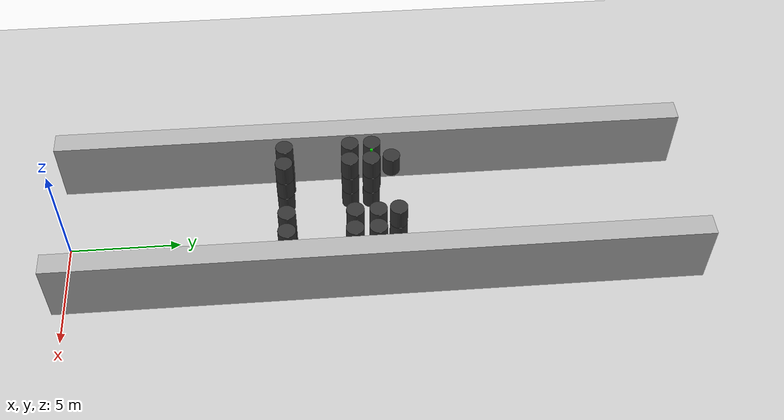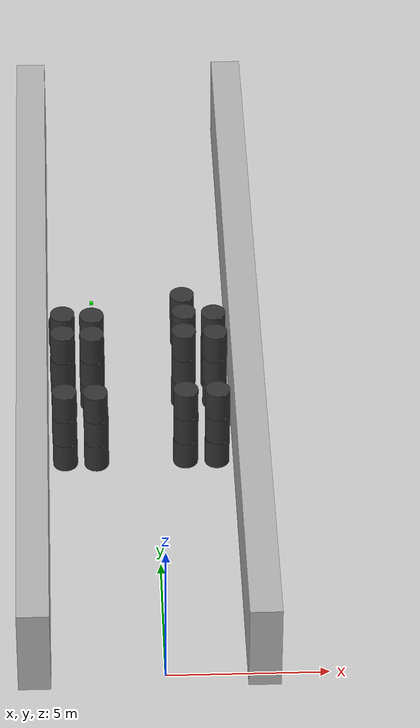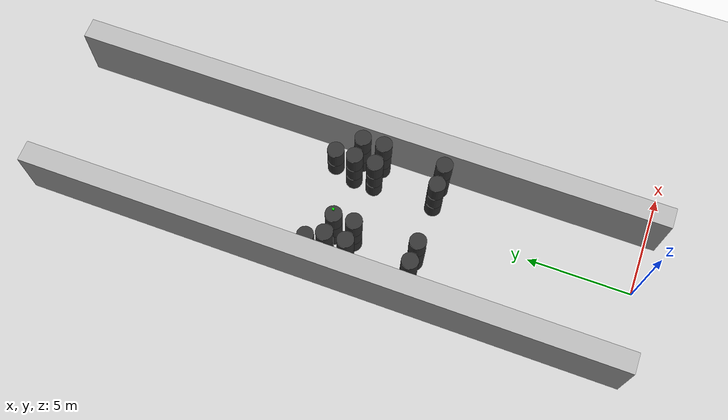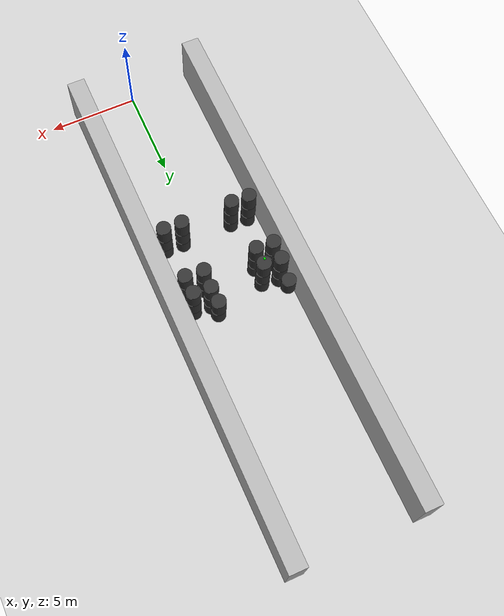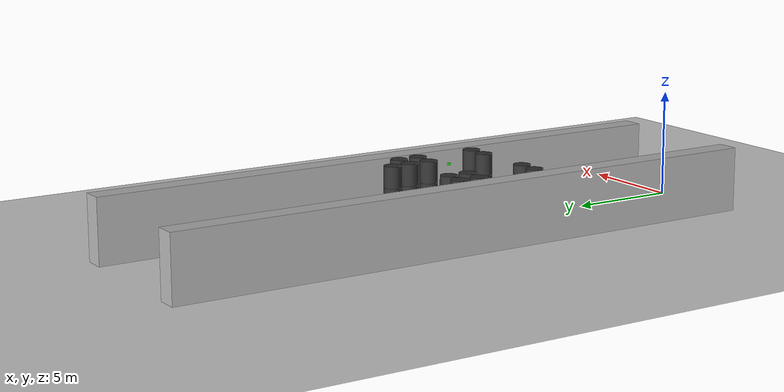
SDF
<sdf version="1.6">
 <world name="default">
  <include><uri>model://ground_plane</uri></include>
  <model name="wall_0">
   <pose frame="sim_world">-4.0 14.0 1.5 0 0 0</pose>
   <static>True</static>
   <link name="wall_0_link">
    <inertial>
     <mass>100</mass>
     <inertia>
      <ixx>0.166667</ixx>
      <ixy>0</ixy>
      <ixz>0</ixz>
      <iyy>0.166667</iyy>
      <iyz>0</iyz>
      <izz>0.166667</izz>
     </inertia>
    </inertial>
    <collision name="wall_0_collision">
     <geometry><box><size>1.0 29.0 3.0</size></box></geometry>
     <max_contacts>100</max_contacts>
    </collision>
    <visual name="wall_0_visual">
     <geometry><box><size>1.0 29.0 3.0</size></box></geometry>
     <material><ambient>0.7 0.7 0.7 1</ambient><diffuse>0.7 0.7 0.7 1</diffuse></material>
    </visual>
   </link>
  </model>
  <model name="wall_1">
   <pose frame="sim_world">3.0 14.0 1.5 0 0 0</pose>
   <static>True</static>
   <link name="wall_1_link">
    <inertial>
     <mass>100</mass>
     <inertia>
      <ixx>0.166667</ixx>
      <ixy>0</ixy>
      <ixz>0</ixz>
      <iyy>0.166667</iyy>
      <iyz>0</iyz>
      <izz>0.166667</izz>
     </inertia>
    </inertial>
    <collision name="wall_1_collision">
     <geometry><box><size>1.0 29.0 3.0</size></box></geometry>
     <max_contacts>100</max_contacts>
    </collision>
    <visual name="wall_1_visual">
     <geometry><box><size>1.0 29.0 3.0</size></box></geometry>
     <material><ambient>0.7 0.7 0.7 1</ambient><diffuse>0.7 0.7 0.7 1</diffuse></material>
    </visual>
   </link>
  </model>
  <model name="cylinder_15">
   <pose frame="sim_world">-2.95974717272 9.99762335335 0.5 0 -0 0</pose>
   <static>True</static>
   <link name="cylinder_15_link">
    <inertial>
     <mass>100</mass>
     <inertia><ixx>0.145833</ixx><ixy>0</ixy><ixz>0</ixz><iyy>0.145833</iyy><iyz>0</iyz><izz>0.125</izz></inertia>
    </inertial>
    <collision name="cylinder_15_collision">
     <geometry><cylinder><length>1.0</length><radius>0.4</radius></cylinder></geometry>
     <max_contacts>100</max_contacts>
    </collision>
    <visual name="cylinder_15_visual">
     <geometry><cylinder><length>1.0</length><radius>0.4</radius></cylinder></geometry>
     <material><ambient>0.2 0.2 0.2 1</ambient><diffuse>0.2 0.2 0.2 1</diffuse></material>
    </visual>
   </link>
  </model>
  <model name="cylinder_16">
   <pose frame="sim_world">-2.96733454405 10.0077599874 1.5 0 -0 0</pose>
   <static>True</static>
   <link name="cylinder_16_link">
    <inertial>
     <mass>100</mass>
     <inertia><ixx>0.145833</ixx><ixy>0</ixy><ixz>0</ixz><iyy>0.145833</iyy><iyz>0</iyz><izz>0.125</izz></inertia>
    </inertial>
    <collision name="cylinder_16_collision">
     <geometry><cylinder><length>1.0</length><radius>0.4</radius></cylinder></geometry>
     <max_contacts>100</max_contacts>
    </collision>
    <visual name="cylinder_16_visual">
     <geometry><cylinder><length>1.0</length><radius>0.4</radius></cylinder></geometry>
     <material><ambient>0.2 0.2 0.2 1</ambient><diffuse>0.2 0.2 0.2 1</diffuse></material>
    </visual>
   </link>
  </model>
  <model name="cylinder_17">
   <pose frame="sim_world">-2.9538205058 10.0074615674 2.5 0 -0 0</pose>
   <static>True</static>
   <link name="cylinder_17_link">
    <inertial>
     <mass>100</mass>
     <inertia><ixx>0.145833</ixx><ixy>0</ixy><ixz>0</ixz><iyy>0.145833</iyy><iyz>0</iyz><izz>0.125</izz></inertia>
    </inertial>
    <collision name="cylinder_17_collision">
     <geometry><cylinder><length>1.0</length><radius>0.4</radius></cylinder></geometry>
     <max_contacts>100</max_contacts>
    </collision>
    <visual name="cylinder_17_visual">
     <geometry><cylinder><length>1.0</length><radius>0.4</radius></cylinder></geometry>
     <material><ambient>0.2 0.2 0.2 1</ambient><diffuse>0.2 0.2 0.2 1</diffuse></material>
    </visual>
   </link>
  </model>
  <model name="cylinder_18">
   <pose frame="sim_world">-2.99630284277 13.0216252734 0.5 0 -0 0</pose>
   <static>True</static>
   <link name="cylinder_18_link">
    <inertial>
     <mass>100</mass>
     <inertia><ixx>0.145833</ixx><ixy>0</ixy><ixz>0</ixz><iyy>0.145833</iyy><iyz>0</iyz><izz>0.125</izz></inertia>
    </inertial>
    <collision name="cylinder_18_collision">
     <geometry><cylinder><length>1.0</length><radius>0.4</radius></cylinder></geometry>
     <max_contacts>100</max_contacts>
    </collision>
    <visual name="cylinder_18_visual">
     <geometry><cylinder><length>1.0</length><radius>0.4</radius></cylinder></geometry>
     <material><ambient>0.2 0.2 0.2 1</ambient><diffuse>0.2 0.2 0.2 1</diffuse></material>
    </visual>
   </link>
  </model>
  <model name="cylinder_19">
   <pose frame="sim_world">-3.01050325647 13.0122026184 1.5 0 -0 0</pose>
   <static>True</static>
   <link name="cylinder_19_link">
    <inertial>
     <mass>100</mass>
     <inertia><ixx>0.145833</ixx><ixy>0</ixy><ixz>0</ixz><iyy>0.145833</iyy><iyz>0</iyz><izz>0.125</izz></inertia>
    </inertial>
    <collision name="cylinder_19_collision">
     <geometry><cylinder><length>1.0</length><radius>0.4</radius></cylinder></geometry>
     <max_contacts>100</max_contacts>
    </collision>
    <visual name="cylinder_19_visual">
     <geometry><cylinder><length>1.0</length><radius>0.4</radius></cylinder></geometry>
     <material><ambient>0.2 0.2 0.2 1</ambient><diffuse>0.2 0.2 0.2 1</diffuse></material>
    </visual>
   </link>
  </model>
  <model name="cylinder_20">
   <pose frame="sim_world">-2.99424971212 13.0228038659 2.5 0 -0 0</pose>
   <static>True</static>
   <link name="cylinder_20_link">
    <inertial>
     <mass>100</mass>
     <inertia><ixx>0.145833</ixx><ixy>0</ixy><ixz>0</ixz><iyy>0.145833</iyy><iyz>0</iyz><izz>0.125</izz></inertia>
    </inertial>
    <collision name="cylinder_20_collision">
     <geometry><cylinder><length>1.0</length><radius>0.4</radius></cylinder></geometry>
     <max_contacts>100</max_contacts>
    </collision>
    <visual name="cylinder_20_visual">
     <geometry><cylinder><length>1.0</length><radius>0.4</radius></cylinder></geometry>
     <material><ambient>0.2 0.2 0.2 1</ambient><diffuse>0.2 0.2 0.2 1</diffuse></material>
    </visual>
   </link>
  </model>
  <model name="cylinder_21">
   <pose frame="sim_world">-2.98432138656 14.0504166469 0.5 0 -0 0</pose>
   <static>True</static>
   <link name="cylinder_21_link">
    <inertial>
     <mass>100</mass>
     <inertia><ixx>0.145833</ixx><ixy>0</ixy><ixz>0</ixz><iyy>0.145833</iyy><iyz>0</iyz><izz>0.125</izz></inertia>
    </inertial>
    <collision name="cylinder_21_collision">
     <geometry><cylinder><length>1.0</length><radius>0.4</radius></cylinder></geometry>
     <max_contacts>100</max_contacts>
    </collision>
    <visual name="cylinder_21_visual">
     <geometry><cylinder><length>1.0</length><radius>0.4</radius></cylinder></geometry>
     <material><ambient>0.2 0.2 0.2 1</ambient><diffuse>0.2 0.2 0.2 1</diffuse></material>
    </visual>
   </link>
  </model>
  <model name="cylinder_22">
   <pose frame="sim_world">-2.98310022397 14.0452732466 1.5 0 -0 0</pose>
   <static>True</static>
   <link name="cylinder_22_link">
    <inertial>
     <mass>100</mass>
     <inertia><ixx>0.145833</ixx><ixy>0</ixy><ixz>0</ixz><iyy>0.145833</iyy><iyz>0</iyz><izz>0.125</izz></inertia>
    </inertial>
    <collision name="cylinder_22_collision">
     <geometry><cylinder><length>1.0</length><radius>0.4</radius></cylinder></geometry>
     <max_contacts>100</max_contacts>
    </collision>
    <visual name="cylinder_22_visual">
     <geometry><cylinder><length>1.0</length><radius>0.4</radius></cylinder></geometry>
     <material><ambient>0.2 0.2 0.2 1</ambient><diffuse>0.2 0.2 0.2 1</diffuse></material>
    </visual>
   </link>
  </model>
  <model name="cylinder_23">
   <pose frame="sim_world">-2.98236017431 14.0354608389 2.5 0 -0 0</pose>
   <static>True</static>
   <link name="cylinder_23_link">
    <inertial>
     <mass>100</mass>
     <inertia><ixx>0.145833</ixx><ixy>0</ixy><ixz>0</ixz><iyy>0.145833</iyy><iyz>0</iyz><izz>0.125</izz></inertia>
    </inertial>
    <collision name="cylinder_23_collision">
     <geometry><cylinder><length>1.0</length><radius>0.4</radius></cylinder></geometry>
     <max_contacts>100</max_contacts>
    </collision>
    <visual name="cylinder_23_visual">
     <geometry><cylinder><length>1.0</length><radius>0.4</radius></cylinder></geometry>
     <material><ambient>0.2 0.2 0.2 1</ambient><diffuse>0.2 0.2 0.2 1</diffuse></material>
    </visual>
   </link>
  </model>
  <model name="cylinder_25">
   <pose frame="sim_world">-3.04206244545 14.9629978575 1.5 0 -0 0</pose>
   <static>True</static>
   <link name="cylinder_25_link">
    <inertial>
     <mass>100</mass>
     <inertia><ixx>0.145833</ixx><ixy>0</ixy><ixz>0</ixz><iyy>0.145833</iyy><iyz>0</iyz><izz>0.125</izz></inertia>
    </inertial>
    <collision name="cylinder_25_collision">
     <geometry><cylinder><length>1.0</length><radius>0.4</radius></cylinder></geometry>
     <max_contacts>100</max_contacts>
    </collision>
    <visual name="cylinder_25_visual">
     <geometry><cylinder><length>1.0</length><radius>0.4</radius></cylinder></geometry>
     <material><ambient>0.2 0.2 0.2 1</ambient><diffuse>0.2 0.2 0.2 1</diffuse></material>
    </visual>
   </link>
  </model>
  <model name="cylinder_60">
   <pose frame="sim_world">-1.94897852264 9.95703798212 0.5 0 -0 0</pose>
   <static>True</static>
   <link name="cylinder_60_link">
    <inertial>
     <mass>100</mass>
     <inertia><ixx>0.145833</ixx><ixy>0</ixy><ixz>0</ixz><iyy>0.145833</iyy><iyz>0</iyz><izz>0.125</izz></inertia>
    </inertial>
    <collision name="cylinder_60_collision">
     <geometry><cylinder><length>1.0</length><radius>0.4</radius></cylinder></geometry>
     <max_contacts>100</max_contacts>
    </collision>
    <visual name="cylinder_60_visual">
     <geometry><cylinder><length>1.0</length><radius>0.4</radius></cylinder></geometry>
     <material><ambient>0.2 0.2 0.2 1</ambient><diffuse>0.2 0.2 0.2 1</diffuse></material>
    </visual>
   </link>
  </model>
  <model name="cylinder_61">
   <pose frame="sim_world">-1.9451901812 9.95248629912 1.5 0 -0 0</pose>
   <static>True</static>
   <link name="cylinder_61_link">
    <inertial>
     <mass>100</mass>
     <inertia><ixx>0.145833</ixx><ixy>0</ixy><ixz>0</ixz><iyy>0.145833</iyy><iyz>0</iyz><izz>0.125</izz></inertia>
    </inertial>
    <collision name="cylinder_61_collision">
     <geometry><cylinder><length>1.0</length><radius>0.4</radius></cylinder></geometry>
     <max_contacts>100</max_contacts>
    </collision>
    <visual name="cylinder_61_visual">
     <geometry><cylinder><length>1.0</length><radius>0.4</radius></cylinder></geometry>
     <material><ambient>0.2 0.2 0.2 1</ambient><diffuse>0.2 0.2 0.2 1</diffuse></material>
    </visual>
   </link>
  </model>
  <model name="cylinder_62">
   <pose frame="sim_world">-1.96005169756 9.96399949782 2.5 0 -0 0</pose>
   <static>True</static>
   <link name="cylinder_62_link">
    <inertial>
     <mass>100</mass>
     <inertia><ixx>0.145833</ixx><ixy>0</ixy><ixz>0</ixz><iyy>0.145833</iyy><iyz>0</iyz><izz>0.125</izz></inertia>
    </inertial>
    <collision name="cylinder_62_collision">
     <geometry><cylinder><length>1.0</length><radius>0.4</radius></cylinder></geometry>
     <max_contacts>100</max_contacts>
    </collision>
    <visual name="cylinder_62_visual">
     <geometry><cylinder><length>1.0</length><radius>0.4</radius></cylinder></geometry>
     <material><ambient>0.2 0.2 0.2 1</ambient><diffuse>0.2 0.2 0.2 1</diffuse></material>
    </visual>
   </link>
  </model>
  <model name="cylinder_63">
   <pose frame="sim_world">-2.03606219713 12.9707468926 0.5 0 -0 0</pose>
   <static>True</static>
   <link name="cylinder_63_link">
    <inertial>
     <mass>100</mass>
     <inertia><ixx>0.145833</ixx><ixy>0</ixy><ixz>0</ixz><iyy>0.145833</iyy><iyz>0</iyz><izz>0.125</izz></inertia>
    </inertial>
    <collision name="cylinder_63_collision">
     <geometry><cylinder><length>1.0</length><radius>0.4</radius></cylinder></geometry>
     <max_contacts>100</max_contacts>
    </collision>
    <visual name="cylinder_63_visual">
     <geometry><cylinder><length>1.0</length><radius>0.4</radius></cylinder></geometry>
     <material><ambient>0.2 0.2 0.2 1</ambient><diffuse>0.2 0.2 0.2 1</diffuse></material>
    </visual>
   </link>
  </model>
  <model name="cylinder_64">
   <pose frame="sim_world">-2.04289103986 12.9710435726 1.5 0 -0 0</pose>
   <static>True</static>
   <link name="cylinder_64_link">
    <inertial>
     <mass>100</mass>
     <inertia><ixx>0.145833</ixx><ixy>0</ixy><ixz>0</ixz><iyy>0.145833</iyy><iyz>0</iyz><izz>0.125</izz></inertia>
    </inertial>
    <collision name="cylinder_64_collision">
     <geometry><cylinder><length>1.0</length><radius>0.4</radius></cylinder></geometry>
     <max_contacts>100</max_contacts>
    </collision>
    <visual name="cylinder_64_visual">
     <geometry><cylinder><length>1.0</length><radius>0.4</radius></cylinder></geometry>
     <material><ambient>0.2 0.2 0.2 1</ambient><diffuse>0.2 0.2 0.2 1</diffuse></material>
    </visual>
   </link>
  </model>
  <model name="cylinder_65">
   <pose frame="sim_world">-2.03231655898 12.9653077057 2.5 0 -0 0</pose>
   <static>True</static>
   <link name="cylinder_65_link">
    <inertial>
     <mass>100</mass>
     <inertia><ixx>0.145833</ixx><ixy>0</ixy><ixz>0</ixz><iyy>0.145833</iyy><iyz>0</iyz><izz>0.125</izz></inertia>
    </inertial>
    <collision name="cylinder_65_collision">
     <geometry><cylinder><length>1.0</length><radius>0.4</radius></cylinder></geometry>
     <max_contacts>100</max_contacts>
    </collision>
    <visual name="cylinder_65_visual">
     <geometry><cylinder><length>1.0</length><radius>0.4</radius></cylinder></geometry>
     <material><ambient>0.2 0.2 0.2 1</ambient><diffuse>0.2 0.2 0.2 1</diffuse></material>
    </visual>
   </link>
  </model>
  <model name="cylinder_66">
   <pose frame="sim_world">-2.01901533279 13.9433417719 0.5 0 -0 0</pose>
   <static>True</static>
   <link name="cylinder_66_link">
    <inertial>
     <mass>100</mass>
     <inertia><ixx>0.145833</ixx><ixy>0</ixy><ixz>0</ixz><iyy>0.145833</iyy><iyz>0</iyz><izz>0.125</izz></inertia>
    </inertial>
    <collision name="cylinder_66_collision">
     <geometry><cylinder><length>1.0</length><radius>0.4</radius></cylinder></geometry>
     <max_contacts>100</max_contacts>
    </collision>
    <visual name="cylinder_66_visual">
     <geometry><cylinder><length>1.0</length><radius>0.4</radius></cylinder></geometry>
     <material><ambient>0.2 0.2 0.2 1</ambient><diffuse>0.2 0.2 0.2 1</diffuse></material>
    </visual>
   </link>
  </model>
  <model name="cylinder_67">
   <pose frame="sim_world">-2.01509976433 13.9500614953 1.5 0 -0 0</pose>
   <static>True</static>
   <link name="cylinder_67_link">
    <inertial>
     <mass>100</mass>
     <inertia><ixx>0.145833</ixx><ixy>0</ixy><ixz>0</ixz><iyy>0.145833</iyy><iyz>0</iyz><izz>0.125</izz></inertia>
    </inertial>
    <collision name="cylinder_67_collision">
     <geometry><cylinder><length>1.0</length><radius>0.4</radius></cylinder></geometry>
     <max_contacts>100</max_contacts>
    </collision>
    <visual name="cylinder_67_visual">
     <geometry><cylinder><length>1.0</length><radius>0.4</radius></cylinder></geometry>
     <material><ambient>0.2 0.2 0.2 1</ambient><diffuse>0.2 0.2 0.2 1</diffuse></material>
    </visual>
   </link>
   <model name="radiation_source_cylinder_67">
    <static>true</static>
    <link name="link_radiation_source_cylinder_67">
     <visual name="visual_radiation_source_cylinder_67_0">
      <geometry><box><size>0.1 0.1 0.1</size></box></geometry>
      <material><ambient>1 0.0  0 1.0</ambient><diffuse>1 0.0  0 1.0</diffuse></material>
     </visual>
     <visual name="visual_radiation_source_cylinder_67_1">
      <pose>0 0 2.0 0 0 0</pose>
      <geometry><box><size>0.1 0.1 0.1</size></box></geometry>
      <material><ambient>0 1.0  0 1.0</ambient><diffuse>0 1.0  0 1.0</diffuse></material>
     </visual>
     <sensor name="radiation_source_cylinder_67" type="radiation_source">
      <always_on>1</always_on>
      <update_rate>100.0</update_rate>
      <topic>source_2/gamma</topic>
      <plugin filename="libradiation_source_plugin.so" name="radiation_source_plugin"/>
     </sensor>
    </link>
   </model>
  </model>
  <model name="cylinder_68">
   <pose frame="sim_world">-2.02384383003 13.9440557648 2.5 0 -0 0</pose>
   <static>True</static>
   <link name="cylinder_68_link">
    <inertial>
     <mass>100</mass>
     <inertia><ixx>0.145833</ixx><ixy>0</ixy><ixz>0</ixz><iyy>0.145833</iyy><iyz>0</iyz><izz>0.125</izz></inertia>
    </inertial>
    <collision name="cylinder_68_collision">
     <geometry><cylinder><length>1.0</length><radius>0.4</radius></cylinder></geometry>
     <max_contacts>100</max_contacts>
    </collision>
    <visual name="cylinder_68_visual">
     <geometry><cylinder><length>1.0</length><radius>0.4</radius></cylinder></geometry>
     <material><ambient>0.2 0.2 0.2 1</ambient><diffuse>0.2 0.2 0.2 1</diffuse></material>
    </visual>
   </link>
  </model>
  <model name="cylinder_105">
   <pose frame="sim_world">0.948998671866 10.0154101619 0.5 0 -0 0</pose>
   <static>True</static>
   <link name="cylinder_105_link">
    <inertial>
     <mass>100</mass>
     <inertia><ixx>0.145833</ixx><ixy>0</ixy><ixz>0</ixz><iyy>0.145833</iyy><iyz>0</iyz><izz>0.125</izz></inertia>
    </inertial>
    <collision name="cylinder_105_collision">
     <geometry><cylinder><length>1.0</length><radius>0.4</radius></cylinder></geometry>
     <max_contacts>100</max_contacts>
    </collision>
    <visual name="cylinder_105_visual">
     <geometry><cylinder><length>1.0</length><radius>0.4</radius></cylinder></geometry>
     <material><ambient>0.2 0.2 0.2 1</ambient><diffuse>0.2 0.2 0.2 1</diffuse></material>
    </visual>
   </link>
  </model>
  <model name="cylinder_106">
   <pose frame="sim_world">0.958469642846 10.0231147059 1.5 0 -0 0</pose>
   <static>True</static>
   <link name="cylinder_106_link">
    <inertial>
     <mass>100</mass>
     <inertia><ixx>0.145833</ixx><ixy>0</ixy><ixz>0</ixz><iyy>0.145833</iyy><iyz>0</iyz><izz>0.125</izz></inertia>
    </inertial>
    <collision name="cylinder_106_collision">
     <geometry><cylinder><length>1.0</length><radius>0.4</radius></cylinder></geometry>
     <max_contacts>100</max_contacts>
    </collision>
    <visual name="cylinder_106_visual">
     <geometry><cylinder><length>1.0</length><radius>0.4</radius></cylinder></geometry>
     <material><ambient>0.2 0.2 0.2 1</ambient><diffuse>0.2 0.2 0.2 1</diffuse></material>
    </visual>
   </link>
  </model>
  <model name="cylinder_107">
   <pose frame="sim_world">0.95387372632 10.0229478934 2.5 0 -0 0</pose>
   <static>True</static>
   <link name="cylinder_107_link">
    <inertial>
     <mass>100</mass>
     <inertia><ixx>0.145833</ixx><ixy>0</ixy><ixz>0</ixz><iyy>0.145833</iyy><iyz>0</iyz><izz>0.125</izz></inertia>
    </inertial>
    <collision name="cylinder_107_collision">
     <geometry><cylinder><length>1.0</length><radius>0.4</radius></cylinder></geometry>
     <max_contacts>100</max_contacts>
    </collision>
    <visual name="cylinder_107_visual">
     <geometry><cylinder><length>1.0</length><radius>0.4</radius></cylinder></geometry>
     <material><ambient>0.2 0.2 0.2 1</ambient><diffuse>0.2 0.2 0.2 1</diffuse></material>
    </visual>
   </link>
  </model>
  <model name="cylinder_108">
   <pose frame="sim_world">0.971334523445 13.0253281531 0.5 0 -0 0</pose>
   <static>True</static>
   <link name="cylinder_108_link">
    <inertial>
     <mass>100</mass>
     <inertia><ixx>0.145833</ixx><ixy>0</ixy><ixz>0</ixz><iyy>0.145833</iyy><iyz>0</iyz><izz>0.125</izz></inertia>
    </inertial>
    <collision name="cylinder_108_collision">
     <geometry><cylinder><length>1.0</length><radius>0.4</radius></cylinder></geometry>
     <max_contacts>100</max_contacts>
    </collision>
    <visual name="cylinder_108_visual">
     <geometry><cylinder><length>1.0</length><radius>0.4</radius></cylinder></geometry>
     <material><ambient>0.2 0.2 0.2 1</ambient><diffuse>0.2 0.2 0.2 1</diffuse></material>
    </visual>
   </link>
  </model>
  <model name="cylinder_109">
   <pose frame="sim_world">0.983166930226 13.0230639042 1.5 0 -0 0</pose>
   <static>True</static>
   <link name="cylinder_109_link">
    <inertial>
     <mass>100</mass>
     <inertia><ixx>0.145833</ixx><ixy>0</ixy><ixz>0</ixz><iyy>0.145833</iyy><iyz>0</iyz><izz>0.125</izz></inertia>
    </inertial>
    <collision name="cylinder_109_collision">
     <geometry><cylinder><length>1.0</length><radius>0.4</radius></cylinder></geometry>
     <max_contacts>100</max_contacts>
    </collision>
    <visual name="cylinder_109_visual">
     <geometry><cylinder><length>1.0</length><radius>0.4</radius></cylinder></geometry>
     <material><ambient>0.2 0.2 0.2 1</ambient><diffuse>0.2 0.2 0.2 1</diffuse></material>
    </visual>
   </link>
  </model>
  <model name="cylinder_110">
   <pose frame="sim_world">0.984909613928 13.029854915 2.5 0 -0 0</pose>
   <static>True</static>
   <link name="cylinder_110_link">
    <inertial>
     <mass>100</mass>
     <inertia><ixx>0.145833</ixx><ixy>0</ixy><ixz>0</ixz><iyy>0.145833</iyy><iyz>0</iyz><izz>0.125</izz></inertia>
    </inertial>
    <collision name="cylinder_110_collision">
     <geometry><cylinder><length>1.0</length><radius>0.4</radius></cylinder></geometry>
     <max_contacts>100</max_contacts>
    </collision>
    <visual name="cylinder_110_visual">
     <geometry><cylinder><length>1.0</length><radius>0.4</radius></cylinder></geometry>
     <material><ambient>0.2 0.2 0.2 1</ambient><diffuse>0.2 0.2 0.2 1</diffuse></material>
    </visual>
   </link>
  </model>
  <model name="cylinder_111">
   <pose frame="sim_world">1.01666655012 14.0469767481 0.5 0 -0 0</pose>
   <static>True</static>
   <link name="cylinder_111_link">
    <inertial>
     <mass>100</mass>
     <inertia><ixx>0.145833</ixx><ixy>0</ixy><ixz>0</ixz><iyy>0.145833</iyy><iyz>0</iyz><izz>0.125</izz></inertia>
    </inertial>
    <collision name="cylinder_111_collision">
     <geometry><cylinder><length>1.0</length><radius>0.4</radius></cylinder></geometry>
     <max_contacts>100</max_contacts>
    </collision>
    <visual name="cylinder_111_visual">
     <geometry><cylinder><length>1.0</length><radius>0.4</radius></cylinder></geometry>
     <material><ambient>0.2 0.2 0.2 1</ambient><diffuse>0.2 0.2 0.2 1</diffuse></material>
    </visual>
   </link>
  </model>
  <model name="cylinder_112">
   <pose frame="sim_world">1.02559655093 14.0395649042 1.5 0 -0 0</pose>
   <static>True</static>
   <link name="cylinder_112_link">
    <inertial>
     <mass>100</mass>
     <inertia><ixx>0.145833</ixx><ixy>0</ixy><ixz>0</ixz><iyy>0.145833</iyy><iyz>0</iyz><izz>0.125</izz></inertia>
    </inertial>
    <collision name="cylinder_112_collision">
     <geometry><cylinder><length>1.0</length><radius>0.4</radius></cylinder></geometry>
     <max_contacts>100</max_contacts>
    </collision>
    <visual name="cylinder_112_visual">
     <geometry><cylinder><length>1.0</length><radius>0.4</radius></cylinder></geometry>
     <material><ambient>0.2 0.2 0.2 1</ambient><diffuse>0.2 0.2 0.2 1</diffuse></material>
    </visual>
   </link>
  </model>
  <model name="cylinder_113">
   <pose frame="sim_world">1.0203901586 14.0457789969 2.5 0 -0 0</pose>
   <static>True</static>
   <link name="cylinder_113_link">
    <inertial>
     <mass>100</mass>
     <inertia><ixx>0.145833</ixx><ixy>0</ixy><ixz>0</ixz><iyy>0.145833</iyy><iyz>0</iyz><izz>0.125</izz></inertia>
    </inertial>
    <collision name="cylinder_113_collision">
     <geometry><cylinder><length>1.0</length><radius>0.4</radius></cylinder></geometry>
     <max_contacts>100</max_contacts>
    </collision>
    <visual name="cylinder_113_visual">
     <geometry><cylinder><length>1.0</length><radius>0.4</radius></cylinder></geometry>
     <material><ambient>0.2 0.2 0.2 1</ambient><diffuse>0.2 0.2 0.2 1</diffuse></material>
    </visual>
   </link>
  </model>
  <model name="cylinder_115">
   <pose frame="sim_world">0.999136476392 14.9554492704 1.5 0 -0 0</pose>
   <static>True</static>
   <link name="cylinder_115_link">
    <inertial>
     <mass>100</mass>
     <inertia><ixx>0.145833</ixx><ixy>0</ixy><ixz>0</ixz><iyy>0.145833</iyy><iyz>0</iyz><izz>0.125</izz></inertia>
    </inertial>
    <collision name="cylinder_115_collision">
     <geometry><cylinder><length>1.0</length><radius>0.4</radius></cylinder></geometry>
     <max_contacts>100</max_contacts>
    </collision>
    <visual name="cylinder_115_visual">
     <geometry><cylinder><length>1.0</length><radius>0.4</radius></cylinder></geometry>
     <material><ambient>0.2 0.2 0.2 1</ambient><diffuse>0.2 0.2 0.2 1</diffuse></material>
    </visual>
   </link>
  </model>
  <model name="cylinder_116">
   <pose frame="sim_world">0.986905610443 14.9516393344 2.5 0 -0 0</pose>
   <static>True</static>
   <link name="cylinder_116_link">
    <inertial>
     <mass>100</mass>
     <inertia><ixx>0.145833</ixx><ixy>0</ixy><ixz>0</ixz><iyy>0.145833</iyy><iyz>0</iyz><izz>0.125</izz></inertia>
    </inertial>
    <collision name="cylinder_116_collision">
     <geometry><cylinder><length>1.0</length><radius>0.4</radius></cylinder></geometry>
     <max_contacts>100</max_contacts>
    </collision>
    <visual name="cylinder_116_visual">
     <geometry><cylinder><length>1.0</length><radius>0.4</radius></cylinder></geometry>
     <material><ambient>0.2 0.2 0.2 1</ambient><diffuse>0.2 0.2 0.2 1</diffuse></material>
    </visual>
   </link>
  </model>
  <model name="cylinder_150">
   <pose frame="sim_world">1.96917621005 9.99769494148 0.5 0 -0 0</pose>
   <static>True</static>
   <link name="cylinder_150_link">
    <inertial>
     <mass>100</mass>
     <inertia><ixx>0.145833</ixx><ixy>0</ixy><ixz>0</ixz><iyy>0.145833</iyy><iyz>0</iyz><izz>0.125</izz></inertia>
    </inertial>
    <collision name="cylinder_150_collision">
     <geometry><cylinder><length>1.0</length><radius>0.4</radius></cylinder></geometry>
     <max_contacts>100</max_contacts>
    </collision>
    <visual name="cylinder_150_visual">
     <geometry><cylinder><length>1.0</length><radius>0.4</radius></cylinder></geometry>
     <material><ambient>0.2 0.2 0.2 1</ambient><diffuse>0.2 0.2 0.2 1</diffuse></material>
    </visual>
   </link>
  </model>
  <model name="cylinder_151">
   <pose frame="sim_world">1.97922197554 10.0108538271 1.5 0 -0 0</pose>
   <static>True</static>
   <link name="cylinder_151_link">
    <inertial>
     <mass>100</mass>
     <inertia><ixx>0.145833</ixx><ixy>0</ixy><ixz>0</ixz><iyy>0.145833</iyy><iyz>0</iyz><izz>0.125</izz></inertia>
    </inertial>
    <collision name="cylinder_151_collision">
     <geometry><cylinder><length>1.0</length><radius>0.4</radius></cylinder></geometry>
     <max_contacts>100</max_contacts>
    </collision>
    <visual name="cylinder_151_visual">
     <geometry><cylinder><length>1.0</length><radius>0.4</radius></cylinder></geometry>
     <material><ambient>0.2 0.2 0.2 1</ambient><diffuse>0.2 0.2 0.2 1</diffuse></material>
    </visual>
   </link>
  </model>
  <model name="cylinder_152">
   <pose frame="sim_world">1.97571667566 9.99975551601 2.5 0 -0 0</pose>
   <static>True</static>
   <link name="cylinder_152_link">
    <inertial>
     <mass>100</mass>
     <inertia><ixx>0.145833</ixx><ixy>0</ixy><ixz>0</ixz><iyy>0.145833</iyy><iyz>0</iyz><izz>0.125</izz></inertia>
    </inertial>
    <collision name="cylinder_152_collision">
     <geometry><cylinder><length>1.0</length><radius>0.4</radius></cylinder></geometry>
     <max_contacts>100</max_contacts>
    </collision>
    <visual name="cylinder_152_visual">
     <geometry><cylinder><length>1.0</length><radius>0.4</radius></cylinder></geometry>
     <material><ambient>0.2 0.2 0.2 1</ambient><diffuse>0.2 0.2 0.2 1</diffuse></material>
    </visual>
   </link>
  </model>
  <model name="cylinder_153">
   <pose frame="sim_world">2.00747459434 12.954884565 0.5 0 -0 0</pose>
   <static>True</static>
   <link name="cylinder_153_link">
    <inertial>
     <mass>100</mass>
     <inertia><ixx>0.145833</ixx><ixy>0</ixy><ixz>0</ixz><iyy>0.145833</iyy><iyz>0</iyz><izz>0.125</izz></inertia>
    </inertial>
    <collision name="cylinder_153_collision">
     <geometry><cylinder><length>1.0</length><radius>0.4</radius></cylinder></geometry>
     <max_contacts>100</max_contacts>
    </collision>
    <visual name="cylinder_153_visual">
     <geometry><cylinder><length>1.0</length><radius>0.4</radius></cylinder></geometry>
     <material><ambient>0.2 0.2 0.2 1</ambient><diffuse>0.2 0.2 0.2 1</diffuse></material>
    </visual>
   </link>
  </model>
  <model name="cylinder_154">
   <pose frame="sim_world">1.99858590276 12.9601572693 1.5 0 -0 0</pose>
   <static>True</static>
   <link name="cylinder_154_link">
    <inertial>
     <mass>100</mass>
     <inertia><ixx>0.145833</ixx><ixy>0</ixy><ixz>0</ixz><iyy>0.145833</iyy><iyz>0</iyz><izz>0.125</izz></inertia>
    </inertial>
    <collision name="cylinder_154_collision">
     <geometry><cylinder><length>1.0</length><radius>0.4</radius></cylinder></geometry>
     <max_contacts>100</max_contacts>
    </collision>
    <visual name="cylinder_154_visual">
     <geometry><cylinder><length>1.0</length><radius>0.4</radius></cylinder></geometry>
     <material><ambient>0.2 0.2 0.2 1</ambient><diffuse>0.2 0.2 0.2 1</diffuse></material>
    </visual>
   </link>
  </model>
  <model name="cylinder_155">
   <pose frame="sim_world">2.00737582554 12.9538755106 2.5 0 -0 0</pose>
   <static>True</static>
   <link name="cylinder_155_link">
    <inertial>
     <mass>100</mass>
     <inertia><ixx>0.145833</ixx><ixy>0</ixy><ixz>0</ixz><iyy>0.145833</iyy><iyz>0</iyz><izz>0.125</izz></inertia>
    </inertial>
    <collision name="cylinder_155_collision">
     <geometry><cylinder><length>1.0</length><radius>0.4</radius></cylinder></geometry>
     <max_contacts>100</max_contacts>
    </collision>
    <visual name="cylinder_155_visual">
     <geometry><cylinder><length>1.0</length><radius>0.4</radius></cylinder></geometry>
     <material><ambient>0.2 0.2 0.2 1</ambient><diffuse>0.2 0.2 0.2 1</diffuse></material>
    </visual>
   </link>
  </model>
  <model name="cylinder_156">
   <pose frame="sim_world">1.98442914665 13.9723909126 0.5 0 -0 0</pose>
   <static>True</static>
   <link name="cylinder_156_link">
    <inertial>
     <mass>100</mass>
     <inertia><ixx>0.145833</ixx><ixy>0</ixy><ixz>0</ixz><iyy>0.145833</iyy><iyz>0</iyz><izz>0.125</izz></inertia>
    </inertial>
    <collision name="cylinder_156_collision">
     <geometry><cylinder><length>1.0</length><radius>0.4</radius></cylinder></geometry>
     <max_contacts>100</max_contacts>
    </collision>
    <visual name="cylinder_156_visual">
     <geometry><cylinder><length>1.0</length><radius>0.4</radius></cylinder></geometry>
     <material><ambient>0.2 0.2 0.2 1</ambient><diffuse>0.2 0.2 0.2 1</diffuse></material>
    </visual>
   </link>
  </model>
  <model name="cylinder_157">
   <pose frame="sim_world">1.98573375983 13.9764345135 1.5 0 -0 0</pose>
   <static>True</static>
   <link name="cylinder_157_link">
    <inertial>
     <mass>100</mass>
     <inertia><ixx>0.145833</ixx><ixy>0</ixy><ixz>0</ixz><iyy>0.145833</iyy><iyz>0</iyz><izz>0.125</izz></inertia>
    </inertial>
    <collision name="cylinder_157_collision">
     <geometry><cylinder><length>1.0</length><radius>0.4</radius></cylinder></geometry>
     <max_contacts>100</max_contacts>
    </collision>
    <visual name="cylinder_157_visual">
     <geometry><cylinder><length>1.0</length><radius>0.4</radius></cylinder></geometry>
     <material><ambient>0.2 0.2 0.2 1</ambient><diffuse>0.2 0.2 0.2 1</diffuse></material>
    </visual>
   </link>
  </model>
  <model name="cylinder_158">
   <pose frame="sim_world">1.99006998119 13.978055681 2.5 0 -0 0</pose>
   <static>True</static>
   <link name="cylinder_158_link">
    <inertial>
     <mass>100</mass>
     <inertia><ixx>0.145833</ixx><ixy>0</ixy><ixz>0</ixz><iyy>0.145833</iyy><iyz>0</iyz><izz>0.125</izz></inertia>
    </inertial>
    <collision name="cylinder_158_collision">
     <geometry><cylinder><length>1.0</length><radius>0.4</radius></cylinder></geometry>
     <max_contacts>100</max_contacts>
    </collision>
    <visual name="cylinder_158_visual">
     <geometry><cylinder><length>1.0</length><radius>0.4</radius></cylinder></geometry>
     <material><ambient>0.2 0.2 0.2 1</ambient><diffuse>0.2 0.2 0.2 1</diffuse></material>
    </visual>
   </link>
  </model>
  <model name="ground_plane"><link name="ground_plane"/></model>
 </world>
</sdf>
